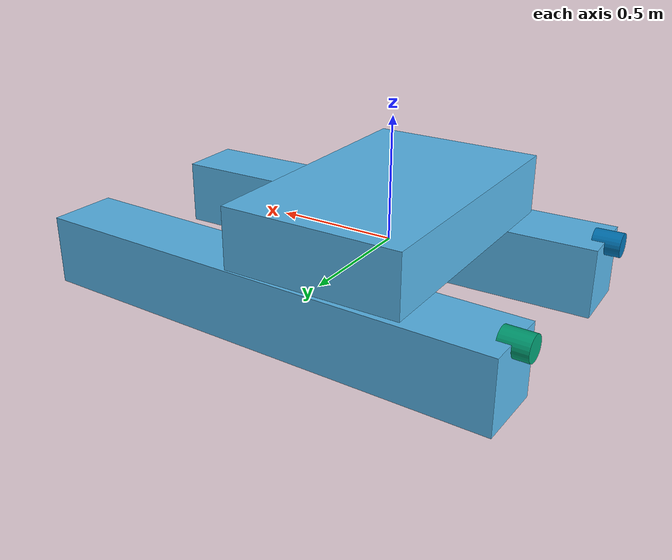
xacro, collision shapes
<?xml version="1.0"?>
<robot xmlns:xacro="http://ros.org/wiki/xacro" name="aidboat">
	<xacro:macro name="collisions" params="prefix reflect">
		<collision name="${prefix}_hull">
			<origin xyz="0.273998 ${reflect*(0.447)} -0.146" rpy="0 0 ${reflect*(-0.0244346)}"/>
			<geometry>
				<box size="2.002 0.286 0.292"/>
			</geometry>
		</collision>
	</xacro:macro>

	<link name="base_link">
	</link>

	<joint name="dummy_joint" type="fixed">
		<parent link="base_link"/>
		<child link="dummy_link" />
	</joint>

	<link name="dummy_link">
		<inertial>
			<mass value="32.712"/>
			<origin xyz="0 0.26377 0.02064" rpy="0 0 0"/>
			<inertia ixx="4.662514672" ixy="0" ixz="0" iyy="12.57628507" iyz="0" izz="15.22053986"/>
		</inertial>

		<collision name="top_base">
			<origin xyz="0 0 0.1255" rpy="0 0 0"/>
			<geometry>
				<box size="0.73 1.15767 0.251"/>
			</geometry>
		</collision>

		<xacro:collisions prefix="right" reflect="1"/>
		<xacro:collisions prefix="left" reflect="-1"/>

		<visual>
			<origin rpy="0 0 0" xyz="0 0 0.292"/>
			<geometry>
				<mesh filename="package://aidboat_description/models/aidboat_base/mesh/AIDBOAT_Base.dae"/>
			</geometry>
		</visual>
	</link>
    <link name="left_engine_link">
        <visual>
            <origin xyz="0 0 0" rpy="0 0 -0.0244346" />
            <geometry>
                <mesh filename="package://aidboat_description/models/engine/mesh/left_engine.dae"/>
            </geometry>
        </visual>
        <collision>
            <origin xyz="0.011 0 0" rpy="0 1.5708 -0.0244346" />
            <geometry>
                <cylinder length="0.113" radius="0.05" />
            </geometry>
        </collision>
        <inertial>
            <mass value="0.126"/>
            <inertia ixx="0.00002900992" ixy="0" ixz="0" iyy="0.00002900992" iyz="0" izz="0.0001575"/>
        </inertial>
    </link>

    <link name="left_propeller_link">
        <visual>
            <origin xyz="0 0 0" rpy="0 0 -0.0244346" />
            <geometry>
                <mesh filename="package://aidboat_description/models/propeller/mesh/left_propeller.dae" />
            </geometry>
        </visual>
        <collision>
            <origin xyz="0.011 0 0" rpy="0 1.5708 -0.0244346" />
            <geometry>
                <cylinder length="0.03" radius="0.0381" />
            </geometry>
        </collision>
        <inertial>
            <mass value="0.030"/>
            <inertia ixx="0.00000058378" ixy="0" ixz="0" iyy="0.00000058378" iyz="0" izz="0.00002177415" />
        </inertial>
    </link>

    <joint name="left_chasis_engine_joint" type="fixed">
        <origin xyz="-0.741 0.47 -0.016" rpy="0 0 0"/>
        <parent link="base_link"/>
        <child link="left_engine_link"/>
    </joint>

    <joint name="left_engine_propeller_joint" type="continuous">
        <axis rpy="0 0 0" xyz="1 0 0" />
        <parent link="left_engine_link"/>
        <child link="left_propeller_link"/>
        <origin xyz="0 0 0" rpy="0 0 0"/>
        <limit effort="0.7250" velocity="369.97489" />
        <dynamics friction="0.05" damping="0.05" />
    </joint>

    <link name="right_engine_link">
        <visual>
            <origin xyz="0 0 0" rpy="0 0 0.0244346" />
            <geometry>
                <mesh filename="package://aidboat_description/models/engine/mesh/right_engine.dae"/>
            </geometry>
        </visual>
        <collision>
            <origin xyz="0.011 0 0" rpy="0 1.5708 0.0244346" />
            <geometry>
                <cylinder length="0.113" radius="0.05" />
            </geometry>
        </collision>
        <inertial>
            <mass value="0.126"/>
            <inertia ixx="0.00002900992" ixy="0" ixz="0" iyy="0.00002900992" iyz="0" izz="0.0001575"/>
        </inertial>
    </link>

    <link name="right_propeller_link">
        <visual>
            <origin xyz="0 0 0" rpy="0 0 0.0244346" />
            <geometry>
                <mesh filename="package://aidboat_description/models/propeller/mesh/right_propeller.dae" />
            </geometry>
        </visual>
        <collision>
            <origin xyz="0.011 0 0" rpy="0 1.5708 0.0244346" />
            <geometry>
                <cylinder length="0.03" radius="0.0381" />
            </geometry>
        </collision>
        <inertial>
            <mass value="0.030"/>
            <inertia ixx="0.00000058378" ixy="0" ixz="0" iyy="0.00000058378" iyz="0" izz="0.00002177415" />
        </inertial>
    </link>

    <joint name="right_chasis_engine_joint" type="fixed">
        <origin xyz="-0.741 -0.47 -0.016" rpy="0 0 0"/>
        <parent link="base_link"/>
        <child link="right_engine_link"/>
    </joint>

    <joint name="right_engine_propeller_joint" type="continuous">
        <axis rpy="0 0 0" xyz="1 0 0" />
        <parent link="right_engine_link"/>
        <child link="right_propeller_link"/>
        <origin xyz="0 0 0" rpy="0 0 0"/>
        <limit effort="0.7250" velocity="369.97489" />
        <dynamics friction="0.05" damping="0.05" />
    </joint>

    <gazebo>
        <plugin name="usv_dynamics_aidboat" filename="libusv_gazebo_dynamics_plugin.so">
            <bodyName>base_link</bodyName>
                <!-- Must be same as the oxean model! -->
            <waterLevel>0</waterLevel>
            <waterDensity>997.8</waterDensity>
                <!-- Added mass -->
            <xDotU>0.0</xDotU>
            <yDotV>0.0</yDotV>
            <nDotR>0.0</nDotR>
                <!-- Linear and quadratic drag -->
            <xU>51.3</xU>
            <xUU>72.4</xUU>
            <yV>40.0</yV>
            <yVV>0.0</yVV>
            <zW>500.0</zW>
            <kP>50.0</kP>
            <mQ>50.0</mQ>
            <nR>400.0</nR>
            <nRR>0.0</nRR>
                <!-- General dimensions -->
            <hullRadius>0.213</hullRadius>
            <boatWidth>1.15767</boatWidth>
            <boatLength>2.05992</boatLength>
                <!-- Length discretazion, AKA, "N" -->
            <length_n>2</length_n>
               <!-- Wave model -->
            <wave_model>ocean_waves</wave_model>
        </plugin>
    </gazebo>
    <gazebo>
        <plugin name="aidboat_gazebo_thrust" filename="libusv_gazebo_thrust_plugin.so" xmlns:xacro="http://ros.org/wiki/xacro">
            <cmdTimeout>1.0</cmdTimeout>
            <thruster>
                <linkName>left_propeller_link</linkName>
                <propJointName>left_engine_propeller_joint</propJointName>
                <engineJointName>left_chasis_engine_joint</engineJointName>
                <cmdTopic>left_thrust_cmd</cmdTopic>
                <angleTopic>left_thrust_angle</angleTopic>
                <enableAngle>false</enableAngle>
            </thruster>
            <thruster>
                <linkName>right_propeller_link</linkName>
                <propJointName>right_engine_propeller_joint</propJointName>
                <engineJointName>right_chasis_engine_joint</engineJointName>
                <cmdTopic>right_thrust_cmd</cmdTopic>
                <angleTopic>right_thrust_angle</angleTopic>
                <enableAngle>false</enableAngle>
            </thruster>
        </plugin>
    </gazebo>
</robot>
